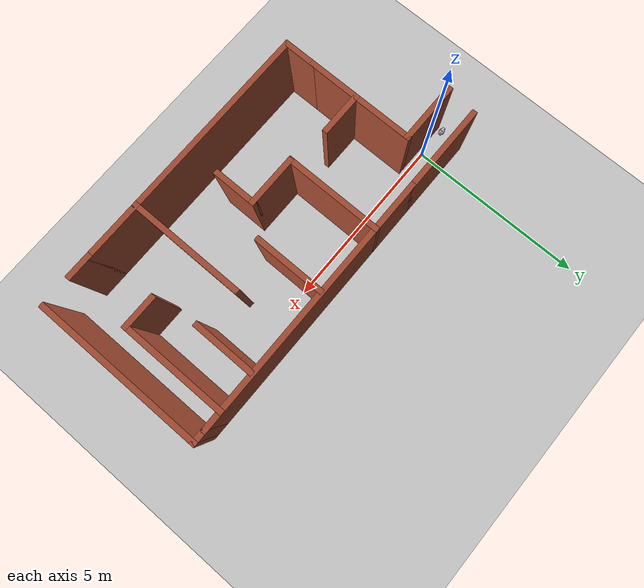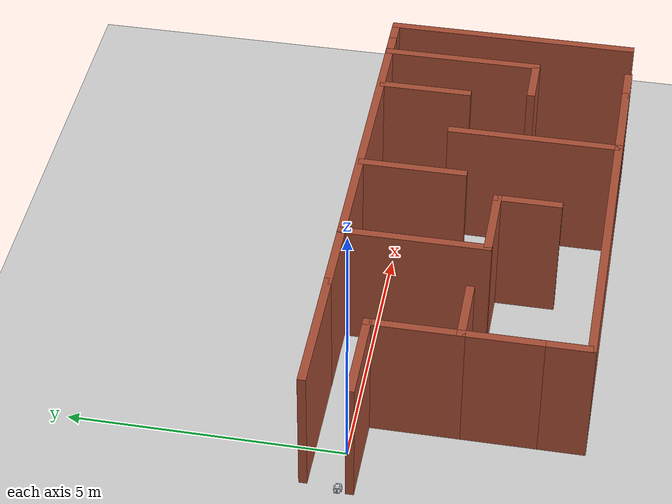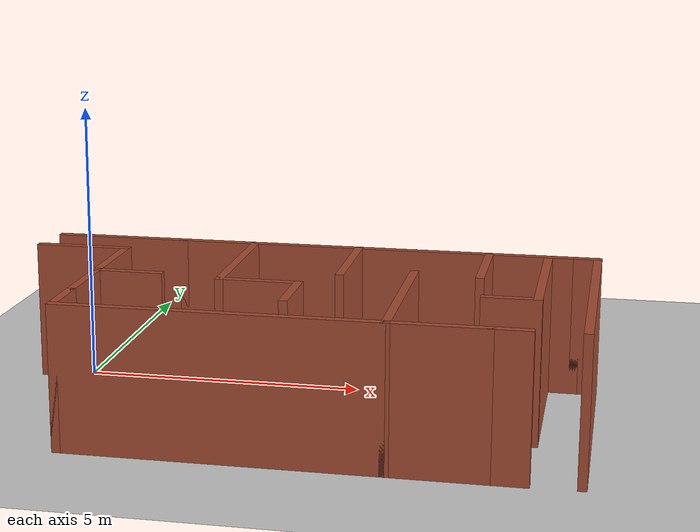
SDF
<sdf version="1.7">
 <world name="default">
  <scene><shadows>0</shadows><ambient>0.4 0.4 0.4 1</ambient><background>0.7 0.7 0.7 1</background></scene>
  <model name="ground_plane">
   <static>1</static>
   <link name="link">
    <collision name="collision">
     <geometry><plane><normal>0 0 1</normal><size>100 100</size></plane></geometry>
     <surface><friction><ode><mu>100</mu><mu2>50</mu2></ode></friction></surface>
    </collision>
    <visual name="visual">
     <cast_shadows>0</cast_shadows>
     <geometry><plane><normal>0 0 1</normal><size>100 100</size></plane></geometry>
     <material>
      <script><uri>file://media/materials/scripts/gazebo.material</uri><name>Gazebo/Grey</name></script>
     </material>
    </visual>
   </link>
  </model>
  <light name="sun" type="directional">
   <pose>0 0 5 0 -0 0</pose>
   <diffuse>0.8 0.8 0.8 1</diffuse>
   <specular>0.2 0.2 0.2 1</specular>
   <attenuation>
    <range>1000</range>
    <constant>0.9</constant>
    <linear>0.01</linear>
    <quadratic>0.001</quadratic>
   </attenuation>
   <direction>-0.5 0.1 -0.9</direction>
   <spot><inner_angle>0</inner_angle><outer_angle>0</outer_angle><falloff>0</falloff></spot>
  </light>
  <physics type="ode">
   <max_step_size>0.001</max_step_size>
   <real_time_factor>1</real_time_factor>
   <real_time_update_rate>1000</real_time_update_rate>
  </physics>
  <gravity>0 0 -9.8</gravity>
  <magnetic_field>6e-06 2.3e-05 -4.2e-05</magnetic_field>
  <atmosphere type="adiabatic"/>
  <spherical_coordinates>
   <surface_model>EARTH_WGS84</surface_model>
   <latitude_deg>0</latitude_deg>
   <longitude_deg>0</longitude_deg>
   <elevation>0</elevation>
   <heading_deg>0</heading_deg>
  </spherical_coordinates>
  <model name="finalproject_1100309">
   <link name="base_link">
    <inertial>
     <pose>-0.001061 -1e-06 0.025637 0 -0 0</pose>
     <mass>5.06442</mass>
     <inertia>
      <ixx>0.004468</ixx>
      <ixy>1e-06</ixy>
      <ixz>8e-05</ixz>
      <iyy>0.018163</iyy>
      <iyz>0</iyz>
      <izz>0.021746</izz>
     </inertia>
    </inertial>
    <collision name="base_link_collision">
     <geometry>
      <mesh>
       <scale>0.001 0.001 0.001</scale>
       <uri>/home/rogerwen/catkin_ws/src/finalproject_1100309_description/meshes/base_link.stl</uri>
      </mesh>
     </geometry>
     <surface><friction><ode><mu>0.1</mu><mu2>0.1</mu2></ode></friction></surface>
    </collision>
    <visual name="base_link_visual">
     <geometry>
      <mesh>
       <scale>0.001 0.001 0.001</scale>
       <uri>/home/rogerwen/catkin_ws/src/finalproject_1100309_description/meshes/base_link.stl</uri>
      </mesh>
     </geometry>
     <material>
      <script><name>Gazebo/Silver</name><uri>file://media/materials/scripts/gazebo.material</uri></script>
     </material>
    </visual>
    <self_collide>1</self_collide>
   </link>
   <joint name="Revolute 1" type="revolute">
    <pose relative_to="base_link">0 -0.05 0.025 0 -0 0</pose>
    <parent>base_link</parent>
    <child>right_wheel_1</child>
    <axis>
     <xyz>0 1 0</xyz>
     <limit><lower>-1e+16</lower><upper>1e+16</upper></limit>
     <dynamics><spring_reference>0</spring_reference><spring_stiffness>0</spring_stiffness></dynamics>
    </axis>
   </joint>
   <link name="right_wheel_1">
    <pose relative_to="Revolute 1">0 0 0 0 -0 0</pose>
    <inertial>
     <pose>-0 -0.005 -0 0 -0 0</pose>
     <mass>0.0182605</mass>
     <inertia><ixx>3e-06</ixx><ixy>0</ixy><ixz>0</ixz><iyy>6e-06</iyy><iyz>0</iyz><izz>3e-06</izz></inertia>
    </inertial>
    <collision name="right_wheel_1_collision">
     <pose>0 0.05 -0.025 0 -0 0</pose>
     <geometry>
      <mesh>
       <scale>0.001 0.001 0.001</scale>
       <uri>/home/rogerwen/catkin_ws/src/finalproject_1100309_description/meshes/right_wheel_1.stl</uri>
      </mesh>
     </geometry>
     <surface><friction><ode><mu>2000</mu><mu2>2000</mu2></ode></friction></surface>
    </collision>
    <visual name="right_wheel_1_visual">
     <pose>0 0.05 -0.025 0 -0 0</pose>
     <geometry>
      <mesh>
       <scale>0.001 0.001 0.001</scale>
       <uri>/home/rogerwen/catkin_ws/src/finalproject_1100309_description/meshes/right_wheel_1.stl</uri>
      </mesh>
     </geometry>
     <material>
      <script><name>Gazebo/Silver</name><uri>file://media/materials/scripts/gazebo.material</uri></script>
     </material>
    </visual>
    <self_collide>1</self_collide>
   </link>
   <joint name="Revolute 2" type="revolute">
    <pose relative_to="base_link">0 0.05 0.025 0 -0 0</pose>
    <parent>base_link</parent>
    <child>left_wheel_1</child>
    <axis>
     <xyz>0 1 0</xyz>
     <limit><lower>-1e+16</lower><upper>1e+16</upper></limit>
     <dynamics><spring_reference>0</spring_reference><spring_stiffness>0</spring_stiffness></dynamics>
    </axis>
   </joint>
   <link name="left_wheel_1">
    <pose relative_to="Revolute 2">0 0 0 0 -0 0</pose>
    <inertial>
     <pose>-0 0.005 0 0 -0 0</pose>
     <mass>0.0182605</mass>
     <inertia><ixx>3e-06</ixx><ixy>0</ixy><ixz>0</ixz><iyy>6e-06</iyy><iyz>0</iyz><izz>3e-06</izz></inertia>
    </inertial>
    <collision name="left_wheel_1_collision">
     <pose>0 -0.05 -0.025 0 -0 0</pose>
     <geometry>
      <mesh>
       <scale>0.001 0.001 0.001</scale>
       <uri>/home/rogerwen/catkin_ws/src/finalproject_1100309_description/meshes/left_wheel_1.stl</uri>
      </mesh>
     </geometry>
     <surface><friction><ode><mu>2000</mu><mu2>2000</mu2></ode></friction></surface>
    </collision>
    <visual name="left_wheel_1_visual">
     <pose>0 -0.05 -0.025 0 -0 0</pose>
     <geometry>
      <mesh>
       <scale>0.001 0.001 0.001</scale>
       <uri>/home/rogerwen/catkin_ws/src/finalproject_1100309_description/meshes/left_wheel_1.stl</uri>
      </mesh>
     </geometry>
     <material>
      <script><name>Gazebo/Silver</name><uri>file://media/materials/scripts/gazebo.material</uri></script>
     </material>
    </visual>
    <self_collide>1</self_collide>
   </link>
   <joint name="Revolute 3" type="revolute">
    <pose relative_to="base_link">0.065 0 0.045 0 -0 0</pose>
    <parent>base_link</parent>
    <child>lidar_1</child>
    <axis>
     <xyz>0 0 1</xyz>
     <limit><lower>-1e+16</lower><upper>1e+16</upper></limit>
     <dynamics><spring_reference>0</spring_reference><spring_stiffness>0</spring_stiffness></dynamics>
    </axis>
   </joint>
   <link name="lidar_1">
    <pose relative_to="Revolute 3">0 0 0 0 -0 0</pose>
    <inertial>
     <pose>0 0 0.0075 0 -0 0</pose>
     <mass>0.231202</mass>
     <inertia><ixx>4e-05</ixx><ixy>0</ixy><ixz>0</ixz><iyy>4e-05</iyy><iyz>0</iyz><izz>7.2e-05</izz></inertia>
    </inertial>
    <collision name="lidar_1_collision">
     <pose>-0.065 0 -0.045 0 -0 0</pose>
     <geometry>
      <mesh>
       <scale>0.001 0.001 0.001</scale>
       <uri>/home/rogerwen/catkin_ws/src/finalproject_1100309_description/meshes/lidar_1.stl</uri>
      </mesh>
     </geometry>
     <surface><friction><ode><mu>0.2</mu><mu2>0.2</mu2></ode></friction></surface>
    </collision>
    <visual name="lidar_1_visual">
     <pose>-0.065 0 -0.045 0 -0 0</pose>
     <geometry>
      <mesh>
       <scale>0.001 0.001 0.001</scale>
       <uri>/home/rogerwen/catkin_ws/src/finalproject_1100309_description/meshes/lidar_1.stl</uri>
      </mesh>
     </geometry>
     <material>
      <script><name>Gazebo/Silver</name><uri>file://media/materials/scripts/gazebo.material</uri></script>
     </material>
    </visual>
    <self_collide>1</self_collide>
    <sensor name="head_hokuyo_sensor" type="ray">
     <visualize>1</visualize>
     <update_rate>40</update_rate>
     <ray>
      <scan>
       <horizontal>
        <samples>720</samples>
        <resolution>1</resolution>
        <min_angle>-1.5708</min_angle>
        <max_angle>1.5708</max_angle>
       </horizontal>
       <vertical><samples>1</samples><min_angle>0</min_angle><max_angle>0</max_angle></vertical>
      </scan>
      <range><min>0.1</min><max>30</max><resolution>0.01</resolution></range>
      <noise><type>gaussian</type><mean>0</mean><stddev>0.01</stddev></noise>
     </ray>
     <plugin name="gazebo_ros_head_hokuyo_controller" filename="libgazebo_ros_laser.so">
      <topicName>/scan</topicName>
      <frameName>lidar_1</frameName>
      <robotNamespace>/</robotNamespace>
     </plugin>
    </sensor>
   </link>
   <joint name="Revolute 4" type="revolute">
    <pose relative_to="base_link">-0.06 0 0.047 0 -0 0</pose>
    <parent>base_link</parent>
    <child>camera_1</child>
    <axis>
     <xyz>0 0 1</xyz>
     <limit><lower>-1e+16</lower><upper>1e+16</upper></limit>
     <dynamics><spring_reference>0</spring_reference><spring_stiffness>0</spring_stiffness></dynamics>
    </axis>
   </joint>
   <link name="camera_1">
    <pose relative_to="Revolute 4">0 0 0 0 -0 0</pose>
    <inertial>
     <pose>0.019208 0 0.062237 0 -0 0</pose>
     <mass>1.79189</mass>
     <inertia>
      <ixx>0.001012</ixx>
      <ixy>0</ixy>
      <ixz>-9.4e-05</ixz>
      <iyy>0.001814</iyy>
      <iyz>0</iyz>
      <izz>0.002158</izz>
     </inertia>
    </inertial>
    <collision name="camera_1_collision">
     <pose>0.06 0 -0.047 0 -0 0</pose>
     <geometry>
      <mesh>
       <scale>0.001 0.001 0.001</scale>
       <uri>/home/rogerwen/catkin_ws/src/finalproject_1100309_description/meshes/camera_1.stl</uri>
      </mesh>
     </geometry>
     <surface><friction><ode><mu>0.2</mu><mu2>0.2</mu2></ode></friction></surface>
    </collision>
    <visual name="camera_1_visual">
     <pose>0.06 0 -0.047 0 -0 0</pose>
     <geometry>
      <mesh>
       <scale>0.001 0.001 0.001</scale>
       <uri>/home/rogerwen/catkin_ws/src/finalproject_1100309_description/meshes/camera_1.stl</uri>
      </mesh>
     </geometry>
     <material>
      <script><name>Gazebo/Silver</name><uri>file://media/materials/scripts/gazebo.material</uri></script>
     </material>
    </visual>
    <self_collide>1</self_collide>
    <sensor name="camera1" type="camera">
     <update_rate>30</update_rate>
     <camera name="head">
      <horizontal_fov>1.39626</horizontal_fov>
      <image><width>800</width><height>800</height><format>R8G8B8</format></image>
      <clip><near>0.02</near><far>300</far></clip>
      <noise><type>gaussian</type><mean>0</mean><stddev>0.007</stddev></noise>
     </camera>
     <plugin name="camera_controller" filename="libgazebo_ros_camera.so">
      <alwaysOn>1</alwaysOn>
      <updateRate>0.0</updateRate>
      <cameraName>/camera</cameraName>
      <imageTopicName>image_raw</imageTopicName>
      <cameraInfoTopicName>camera_info</cameraInfoTopicName>
      <frameName>camera_1</frameName>
      <hackBaseline>0.07</hackBaseline>
      <distortionK1>0.0</distortionK1>
      <distortionK2>0.0</distortionK2>
      <distortionK3>0.0</distortionK3>
      <distortionT1>0.0</distortionT1>
      <distortionT2>0.0</distortionT2>
      <robotNamespace>/</robotNamespace>
     </plugin>
    </sensor>
   </link>
   <plugin name="control" filename="libgazebo_ros_control.so"><robotNamespace>/</robotNamespace></plugin>
   <static>0</static>
   <plugin name="differential_drive_controller" filename="libgazebo_ros_diff_drive.so">
    <updateRate>100{update_rate}</updateRate>
    <leftJoint>Revolute 2</leftJoint>
    <rightJoint>Revolute 1</rightJoint>
    <wheelSeparation>0.1</wheelSeparation>
    <wheelDiameter>0.05</wheelDiameter>
    <wheelAcceleration>1.0</wheelAcceleration>
    <wheelTorque>70</wheelTorque>
    <commandTopic>cmd_vel</commandTopic>
    <odometryTopic>odom</odometryTopic>
    <odometryFrame>odom</odometryFrame>
    <robotBaseFrame>base_link</robotBaseFrame>
    <odometrySource>1</odometrySource>
    <publishWheelTF>1</publishWheelTF>
    <publishOdom>1</publishOdom>
    <publishWheelJointState>1</publishWheelJointState>
    <legacyMode>0</legacyMode>
    <robotNamespace>/</robotNamespace>
   </plugin>
   <pose>-0.861574 0.005885 -5e-06 0.000231 7.3e-05 0.000162</pose>
  </model>
  <model name="fp1.world">
   <pose>4.169 -1.69001 0 0 -0 0</pose>
   <link name="Wall_16">
    <collision name="Wall_16_Collision">
     <geometry><box><size>1.75 0.15 2.5</size></box></geometry>
     <pose>0 0 1.25 0 -0 0</pose>
    </collision>
    <visual name="Wall_16_Visual">
     <pose>0 0 1.25 0 -0 0</pose>
     <geometry><box><size>1.75 0.15 2.5</size></box></geometry>
     <material>
      <script><uri>file://media/materials/scripts/gazebo.material</uri><name>Gazebo/Bricks</name></script>
      <ambient>1 1 1 1</ambient>
     </material>
     <meta><layer>0</layer></meta>
    </visual>
    <pose>-4.21 1.48501 0 0 -0 0</pose>
   </link>
   <link name="Wall_18">
    <collision name="Wall_18_Collision">
     <geometry><box><size>2.5 0.15 2.5</size></box></geometry>
     <pose>0 0 1.25 0 -0 0</pose>
    </collision>
    <visual name="Wall_18_Visual">
     <pose>0 0 1.25 0 -0 0</pose>
     <geometry><box><size>2.5 0.15 2.5</size></box></geometry>
     <material>
      <script><uri>file://media/materials/scripts/gazebo.material</uri><name>Gazebo/Bricks</name></script>
      <ambient>1 1 1 1</ambient>
     </material>
     <meta><layer>0</layer></meta>
    </visual>
    <pose>-3.715 2.31501 0 0 -0 0</pose>
   </link>
   <link name="Wall_23">
    <collision name="Wall_23_Collision">
     <geometry><box><size>1.75 0.15 2.5</size></box></geometry>
     <pose>0 0 1.25 0 -0 0</pose>
    </collision>
    <visual name="Wall_23_Visual">
     <pose>0 0 1.25 0 -0 0</pose>
     <geometry><box><size>1.75 0.15 2.5</size></box></geometry>
     <material>
      <script><uri>file://media/materials/scripts/gazebo.material</uri><name>Gazebo/Bricks</name></script>
      <ambient>1 1 1 1</ambient>
     </material>
     <meta><layer>0</layer></meta>
    </visual>
    <pose>-3.41 0.685012 0 0 -0 -1.5708</pose>
   </link>
   <link name="Wall_24">
    <collision name="Wall_24_Collision">
     <geometry><box><size>1.25 0.15 2.5</size></box></geometry>
     <pose>0 0 1.25 0 -0 0</pose>
    </collision>
    <visual name="Wall_24_Visual">
     <pose>0 0 1.25 0 -0 0</pose>
     <geometry><box><size>1.25 0.15 2.5</size></box></geometry>
     <material>
      <script><uri>file://media/materials/scripts/gazebo.material</uri><name>Gazebo/Bricks</name></script>
      <ambient>1 1 1 1</ambient>
     </material>
     <meta><layer>0</layer></meta>
    </visual>
    <pose>-2.86 -0.114988 0 0 -0 0</pose>
   </link>
   <link name="Wall_26">
    <collision name="Wall_26_Collision">
     <geometry><box><size>1.5 0.15 2.5</size></box></geometry>
     <pose>0 0 1.25 0 -0 0</pose>
    </collision>
    <visual name="Wall_26_Visual">
     <pose>0 0 1.25 0 -0 0</pose>
     <geometry><box><size>1.5 0.15 2.5</size></box></geometry>
     <material>
      <script><uri>file://media/materials/scripts/gazebo.material</uri><name>Gazebo/Bricks</name></script>
      <ambient>1 1 1 1</ambient>
     </material>
     <meta><layer>0</layer></meta>
    </visual>
    <pose>-1.865 2.31501 0 0 -0 0</pose>
   </link>
   <link name="Wall_27">
    <collision name="Wall_27_Collision">
     <geometry><box><size>2.75 0.15 2.5</size></box></geometry>
     <pose>0 0 1.25 0 -0 0</pose>
    </collision>
    <visual name="Wall_27_Visual">
     <pose>0 0 1.25 0 -0 0</pose>
     <geometry><box><size>2.75 0.15 2.5</size></box></geometry>
     <material>
      <script><uri>file://media/materials/scripts/gazebo.material</uri><name>Gazebo/Bricks</name></script>
      <ambient>1 1 1 1</ambient>
     </material>
     <meta><layer>0</layer></meta>
    </visual>
    <pose>-1.19 1.01501 0 0 -0 -1.5708</pose>
   </link>
   <link name="Wall_29">
    <collision name="Wall_29_Collision">
     <geometry><box><size>1.5 0.15 2.5</size></box></geometry>
     <pose>0 0 1.25 0 -0 0</pose>
    </collision>
    <visual name="Wall_29_Visual">
     <pose>0 0 1.25 0 -0 0</pose>
     <geometry><box><size>1.5 0.15 2.5</size></box></geometry>
     <material>
      <script><uri>file://media/materials/scripts/gazebo.material</uri><name>Gazebo/Bricks</name></script>
      <ambient>1 1 1 1</ambient>
     </material>
     <meta><layer>0</layer></meta>
    </visual>
    <pose>-3.41 -0.789988 0 0 -0 -1.5708</pose>
   </link>
   <link name="Wall_30">
    <collision name="Wall_30_Collision">
     <geometry><box><size>1 0.15 2.5</size></box></geometry>
     <pose>0 0 1.25 0 -0 0</pose>
    </collision>
    <visual name="Wall_30_Visual">
     <pose>0 0 1.25 0 -0 0</pose>
     <geometry><box><size>1 0.15 2.5</size></box></geometry>
     <material>
      <script><uri>file://media/materials/scripts/gazebo.material</uri><name>Gazebo/Bricks</name></script>
      <ambient>1 1 1 1</ambient>
     </material>
     <meta><layer>0</layer></meta>
    </visual>
    <pose>-3.41 -1.88999 0 0 -0 -1.5708</pose>
   </link>
   <link name="Wall_33">
    <collision name="Wall_33_Collision">
     <geometry><box><size>1.5 0.15 2.5</size></box></geometry>
     <pose>0 0 1.25 0 -0 0</pose>
    </collision>
    <visual name="Wall_33_Visual">
     <pose>0 0 1.25 0 -0 0</pose>
     <geometry><box><size>1.5 0.15 2.5</size></box></geometry>
     <material>
      <script><uri>file://media/materials/scripts/gazebo.material</uri><name>Gazebo/Bricks</name></script>
      <ambient>1 1 1 1</ambient>
     </material>
     <meta><layer>0</layer></meta>
    </visual>
    <pose>-0.515 -0.284988 0 0 -0 0</pose>
   </link>
   <link name="Wall_34">
    <collision name="Wall_34_Collision">
     <geometry><box><size>1.25 0.15 2.5</size></box></geometry>
     <pose>0 0 1.25 0 -0 0</pose>
    </collision>
    <visual name="Wall_34_Visual">
     <pose>0 0 1.25 0 -0 0</pose>
     <geometry><box><size>1.25 0.15 2.5</size></box></geometry>
     <material>
      <script><uri>file://media/materials/scripts/gazebo.material</uri><name>Gazebo/Bricks</name></script>
      <ambient>1 1 1 1</ambient>
     </material>
     <meta><layer>0</layer></meta>
    </visual>
    <pose>0.16 -0.834988 0 0 -0 -1.5708</pose>
   </link>
   <link name="Wall_37">
    <collision name="Wall_37_Collision">
     <geometry><box><size>5.517 0.15 2.5</size></box></geometry>
     <pose>0 0 1.25 0 -0 0</pose>
    </collision>
    <visual name="Wall_37_Visual">
     <pose>0 0 1.25 0 -0 0</pose>
     <geometry><box><size>5.517 0.15 2.5</size></box></geometry>
     <material>
      <script><uri>file://media/materials/scripts/gazebo.material</uri><name>Gazebo/Bricks</name></script>
      <ambient>1 1 1 1</ambient>
     </material>
     <meta><layer>0</layer></meta>
    </visual>
    <pose>-0.7265 -2.31499 0 0 -0 0</pose>
   </link>
   <link name="Wall_38">
    <collision name="Wall_38_Collision">
     <geometry><box><size>3.25 0.15 2.5</size></box></geometry>
     <pose>0 0 1.25 0 -0 0</pose>
    </collision>
    <visual name="Wall_38_Visual">
     <pose>0 0 1.25 0 -0 0</pose>
     <geometry><box><size>3.25 0.15 2.5</size></box></geometry>
     <material>
      <script><uri>file://media/materials/scripts/gazebo.material</uri><name>Gazebo/Bricks</name></script>
      <ambient>1 1 1 1</ambient>
     </material>
     <meta><layer>0</layer></meta>
    </visual>
    <pose>1.9575 -0.764988 0 0 -0 1.57047</pose>
   </link>
   <link name="Wall_40">
    <collision name="Wall_40_Collision">
     <geometry><box><size>6 0.15 2.5</size></box></geometry>
     <pose>0 0 1.25 0 -0 0</pose>
    </collision>
    <visual name="Wall_40_Visual">
     <pose>0 0 1.25 0 -0 0</pose>
     <geometry><box><size>6 0.15 2.5</size></box></geometry>
     <material>
      <script><uri>file://media/materials/scripts/gazebo.material</uri><name>Gazebo/Bricks</name></script>
      <ambient>1 1 1 1</ambient>
     </material>
     <meta><layer>0</layer></meta>
    </visual>
    <pose>1.735 2.31501 0 0 -0 0</pose>
   </link>
   <link name="Wall_43">
    <collision name="Wall_43_Collision">
     <geometry><box><size>2 0.15 2.5</size></box></geometry>
     <pose>0 0 1.25 0 -0 0</pose>
    </collision>
    <visual name="Wall_43_Visual">
     <pose>0 0 1.25 0 -0 0</pose>
     <geometry><box><size>2 0.15 2.5</size></box></geometry>
     <material>
      <script><uri>file://media/materials/scripts/gazebo.material</uri><name>Gazebo/Bricks</name></script>
      <ambient>1 1 1 1</ambient>
     </material>
     <meta><layer>0</layer></meta>
    </visual>
    <pose>0.74 1.34001 0 0 -0 -1.5708</pose>
   </link>
   <link name="Wall_45">
    <collision name="Wall_45_Collision">
     <geometry><box><size>1.75 0.15 2.5</size></box></geometry>
     <pose>0 0 1.25 0 -0 0</pose>
    </collision>
    <visual name="Wall_45_Visual">
     <pose>0 0 1.25 0 -0 0</pose>
     <geometry><box><size>1.75 0.15 2.5</size></box></geometry>
     <material>
      <script><uri>file://media/materials/scripts/gazebo.material</uri><name>Gazebo/Bricks</name></script>
      <ambient>1 1 1 1</ambient>
     </material>
     <meta><layer>0</layer></meta>
    </visual>
    <pose>3.1 1.45501 0 0 -0 -1.5708</pose>
   </link>
   <link name="Wall_47">
    <collision name="Wall_47_Collision">
     <geometry><box><size>3 0.15 2.5</size></box></geometry>
     <pose>0 0 1.25 0 -0 0</pose>
    </collision>
    <visual name="Wall_47_Visual">
     <pose>0 0 1.25 0 -0 0</pose>
     <geometry><box><size>3 0.15 2.5</size></box></geometry>
     <material>
      <script><uri>file://media/materials/scripts/gazebo.material</uri><name>Gazebo/Bricks</name></script>
      <ambient>1 1 1 1</ambient>
     </material>
     <meta><layer>0</layer></meta>
    </visual>
    <pose>4.15 0.880012 0 0 -0 -1.5708</pose>
   </link>
   <link name="Wall_48">
    <collision name="Wall_48_Collision">
     <geometry><box><size>1 0.15 2.5</size></box></geometry>
     <pose>0 0 1.25 0 -0 0</pose>
    </collision>
    <visual name="Wall_48_Visual">
     <pose>0 0 1.25 0 -0 0</pose>
     <geometry><box><size>1 0.15 2.5</size></box></geometry>
     <material>
      <script><uri>file://media/materials/scripts/gazebo.material</uri><name>Gazebo/Bricks</name></script>
      <ambient>1 1 1 1</ambient>
     </material>
     <meta><layer>0</layer></meta>
    </visual>
    <pose>3.725 -0.544988 0 0 -0 3.14159</pose>
   </link>
   <link name="Wall_50">
    <collision name="Wall_50_Collision">
     <geometry><box><size>0.5 0.15 2.5</size></box></geometry>
     <pose>0 0 1.25 0 -0 0</pose>
    </collision>
    <visual name="Wall_50_Visual">
     <pose>0 0 1.25 0 -0 0</pose>
     <geometry><box><size>0.5 0.15 2.5</size></box></geometry>
     <material>
      <script><uri>file://media/materials/scripts/gazebo.material</uri><name>Gazebo/Bricks</name></script>
      <ambient>1 1 1 1</ambient>
     </material>
     <meta><layer>0</layer></meta>
    </visual>
    <pose>4.835 2.31501 0 0 -0 0</pose>
   </link>
   <link name="Wall_51">
    <collision name="Wall_51_Collision">
     <geometry><box><size>4.75 0.15 2.5</size></box></geometry>
     <pose>0 0 1.25 0 -0 0</pose>
    </collision>
    <visual name="Wall_51_Visual">
     <pose>0 0 1.25 0 -0 0</pose>
     <geometry><box><size>4.75 0.15 2.5</size></box></geometry>
     <material>
      <script><uri>file://media/materials/scripts/gazebo.material</uri><name>Gazebo/Bricks</name></script>
      <ambient>1 1 1 1</ambient>
     </material>
     <meta><layer>0</layer></meta>
    </visual>
    <pose>5.01 0.015012 0 0 -0 -1.5708</pose>
   </link>
   <link name="Wall_54">
    <collision name="Wall_54_Collision">
     <geometry><box><size>1.733 0.15 2.5</size></box></geometry>
     <pose>0 0 1.25 0 -0 0</pose>
    </collision>
    <visual name="Wall_54_Visual">
     <pose>0 0 1.25 0 -0 0</pose>
     <geometry><box><size>1.733 0.15 2.5</size></box></geometry>
     <material>
      <script><uri>file://media/materials/scripts/gazebo.material</uri><name>Gazebo/Bricks</name></script>
      <ambient>1 1 1 1</ambient>
     </material>
     <meta><layer>0</layer></meta>
    </visual>
    <pose>2.7485 -2.31499 0 0 -0 0</pose>
   </link>
   <link name="Wall_55">
    <collision name="Wall_55_Collision">
     <geometry><box><size>0.75 0.15 2.5</size></box></geometry>
     <pose>0 0 1.25 0 -0 0</pose>
    </collision>
    <visual name="Wall_55_Visual">
     <pose>0 0 1.25 0 -0 0</pose>
     <geometry><box><size>0.75 0.15 2.5</size></box></geometry>
     <material>
      <script><uri>file://media/materials/scripts/gazebo.material</uri><name>Gazebo/Bricks</name></script>
      <ambient>1 1 1 1</ambient>
     </material>
     <meta><layer>0</layer></meta>
    </visual>
    <pose>3.84 -2.31499 0 0 -0 0</pose>
   </link>
   <static>1</static>
  </model>
 </world>
</sdf>
